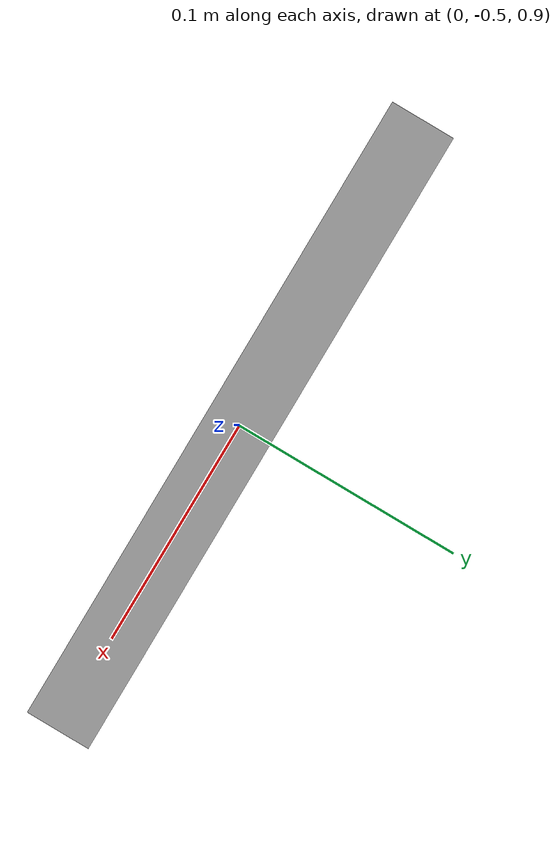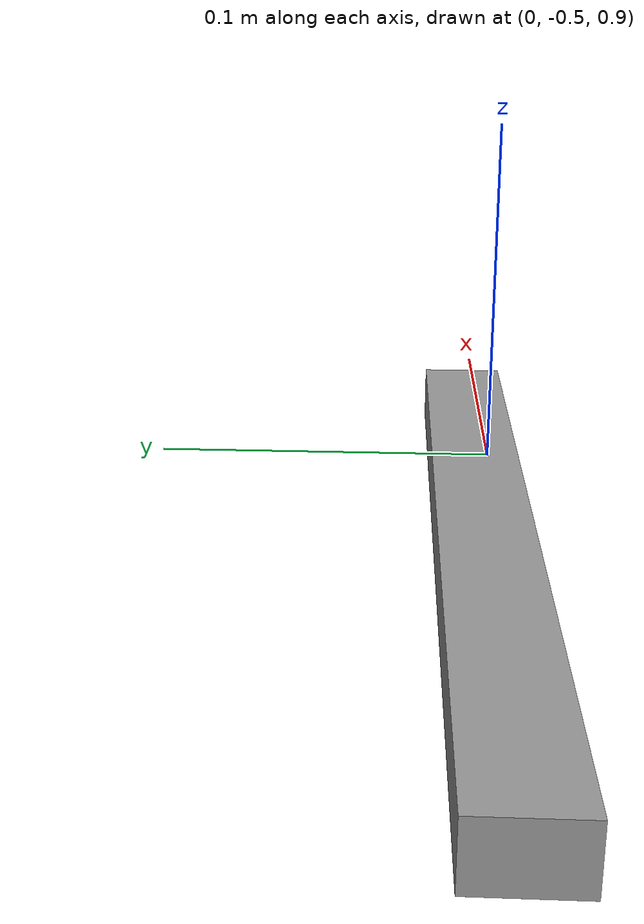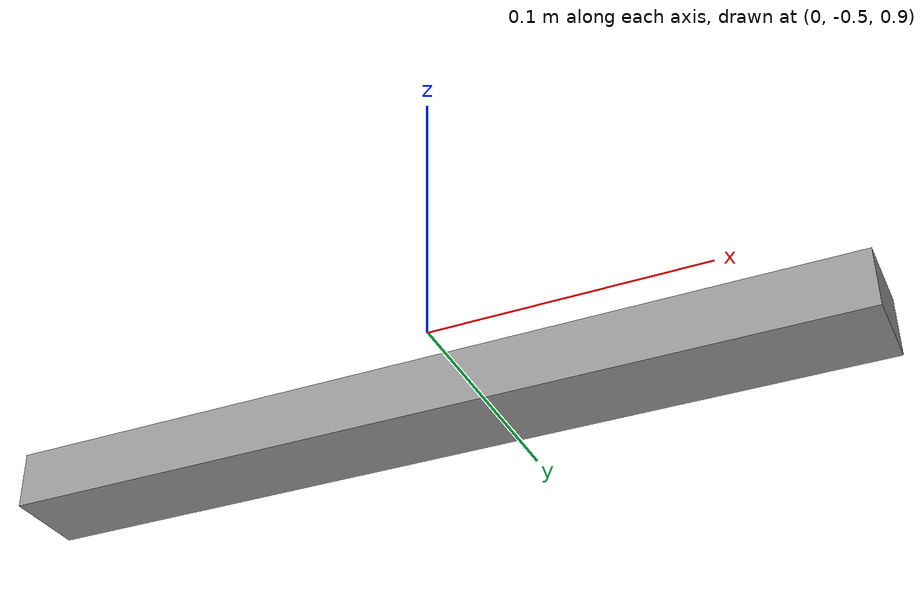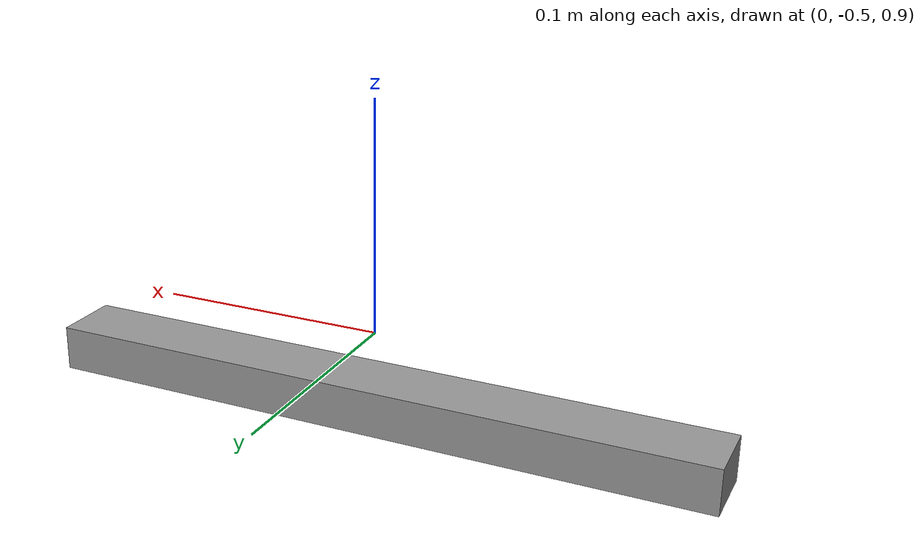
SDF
<?xml version='1.0'?>
<sdf version='1.6'>
  <model name='lanchet'>
    <link name="handle">
    	<pose>0 -0.5 0.87 0 0 0</pose>
      <inertial>
        <mass>0.05</mass>
        <inertia>
          <ixx>0.001</ixx>
          <iyy>0.001</iyy>
          <izz>0.001</izz>
        </inertia>
      </inertial>
      <visual name='visual_handle'>
        <geometry>
          <box>
            <size>0.3 0.03 0.02</size>
          </box>
        </geometry>
        <material>
          <script>
            <uri>file://media/materials/scripts/gazebo.material</uri>
            <name>Gazebo/Gray</name>
          </script>
        </material>
      </visual>
      <collision name='collision_handle'>
        <geometry>
          <box>
            <size>0.3 0.03 0.02</size>
          </box>
        </geometry>
        <surface>
          <friction>
            <ode>
              <mu>10</mu>
              <mu2>10</mu2>
            </ode>
          </friction>
        </surface>
      </collision>
    </link>

</model>
</sdf>
